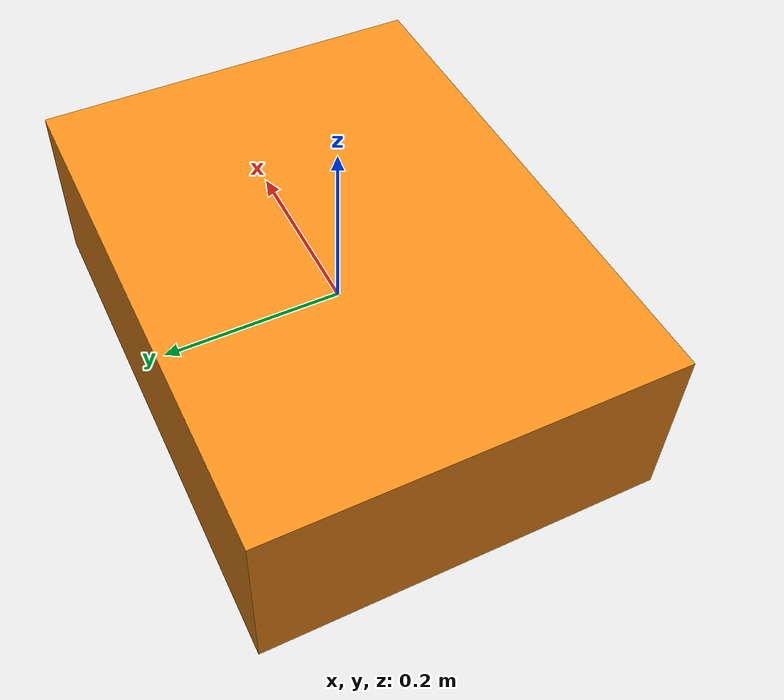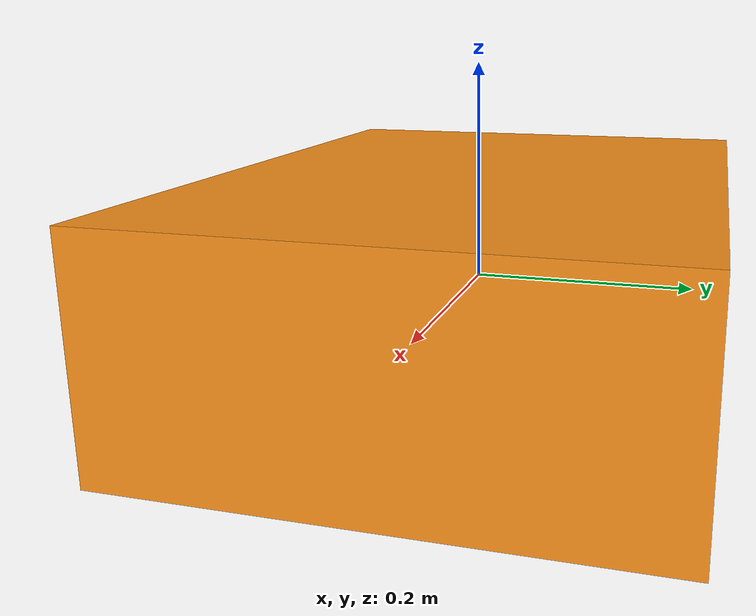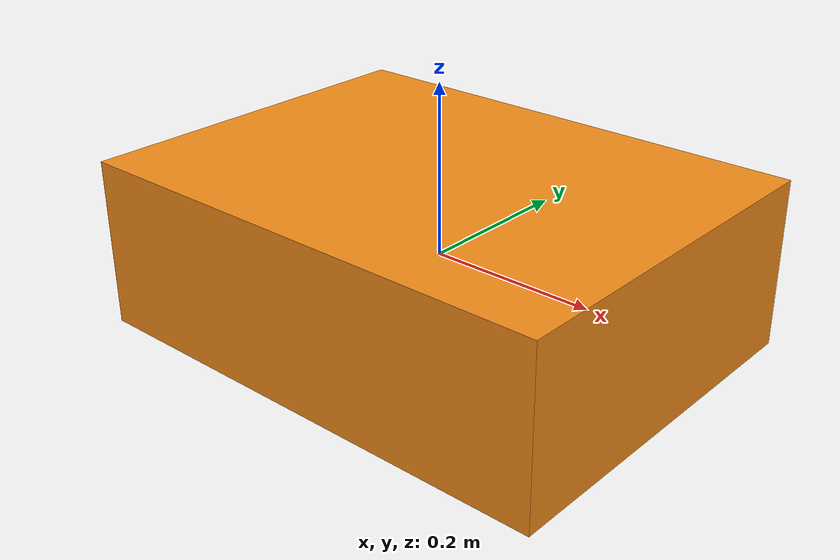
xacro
<?xml version="1.0"?>
<robot xmlns:xacro="http://www.ros.org/wiki/xacro" >
    <xacro:property name="chassis_length" value="0.600"/>
    <xacro:property name="chassis_width" value="0.450"/>
    <xacro:property name="chassis_height" value="0.200"/>
    <xacro:property name="chassis_mass" value="10.0"/>

    <!-- BASE LINK -->

    <link name="base_link">
    </link>

    <!-- CHASSIS LINK -->

    <joint name="chassis_joint" type="fixed">
        <parent link="base_link"/>
        <child link="chassis"/>
        <origin xyz="0 0 0"/>
    </joint>

    <link name="chassis">
        <visual>
            <origin xyz="0 0 0"/>
            <geometry>
                <box size="${chassis_length} ${chassis_width} ${chassis_height}"/>
            </geometry>
            <material name="orange"/>
        </visual>
        <xacro:inertial_box mass="15" x="${chassis_length}" y="${chassis_width}" z="${chassis_height}">
            <origin xyz="0 0 0" rpy="0 0 0"/>
        </xacro:inertial_box>
    </link>

    <gazebo reference="chassis">
        <material>Gazebo/Orange</material>
    </gazebo>
</robot>
